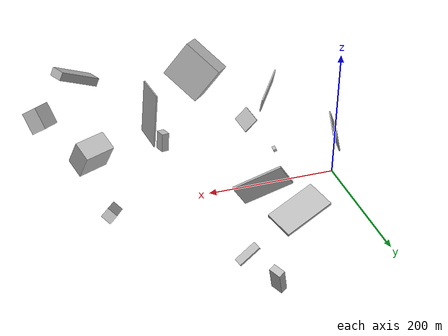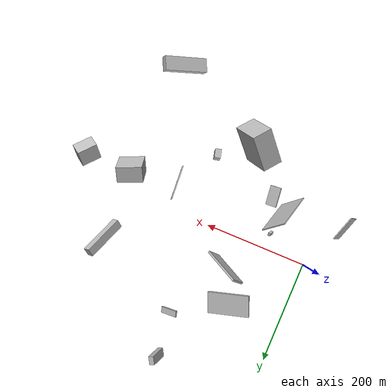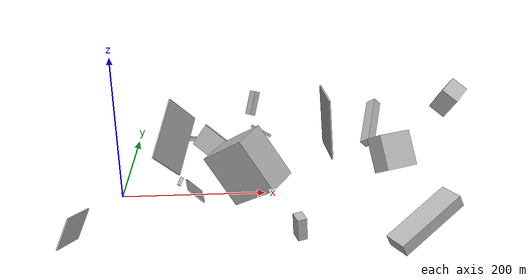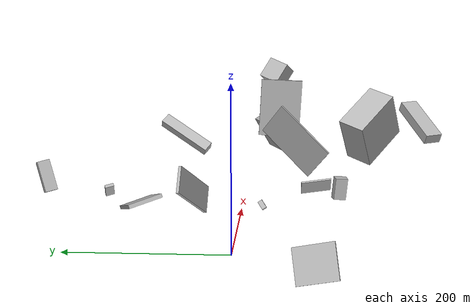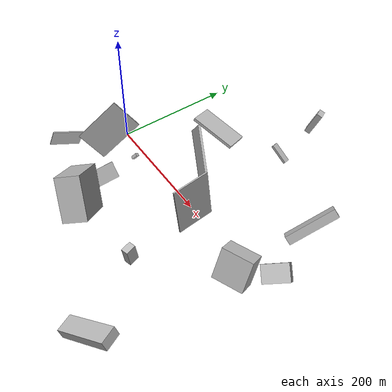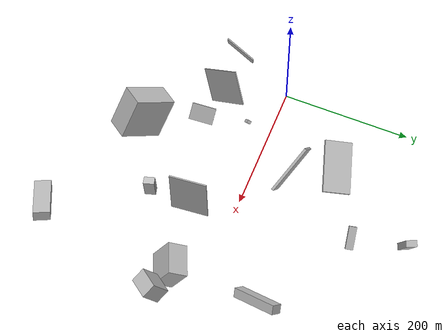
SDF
<sdf version="1.6">
 <world name="default">
  <scene>
   <sky><clouds><speed>12</speed></clouds></sky>
   <ambient>0.4 0.4 0.4 1</ambient>
   <background>0.7 0.7 0.7 1</background>
   <shadows>1</shadows>
  </scene>
  <gravity>0 0 -9.8066</gravity>
  <magnetic_field>6e-06 2.3e-05 -4.2e-05</magnetic_field>
  <physics default="0" name="default_physics" type="ode">
   <ode>
    <solver>
     <type>quick</type>
     <iters>10</iters>
     <sor>1.0</sor>
     <use_dynamic_moi_rescaling>0</use_dynamic_moi_rescaling>
    </solver>
    <constraints>
     <cfm>0</cfm>
     <erp>0.2</erp>
     <contact_max_correcting_vel>100</contact_max_correcting_vel>
     <contact_surface_layer>0.001</contact_surface_layer>
    </constraints>
   </ode>
   <max_step_size>0.004</max_step_size>
   <real_time_factor>1</real_time_factor>
   <real_time_update_rate>250</real_time_update_rate>
  </physics>
  <light name="sun" type="directional">
   <pose>0 0 10 0 0 0</pose>
   <diffuse>0.8 0.8 0.8 1</diffuse>
   <specular>0.2 0.2 0.2 1</specular>
   <attenuation>
    <range>1000</range>
    <constant>0.9</constant>
    <linear>0.01</linear>
    <quadratic>0.001</quadratic>
   </attenuation>
   <direction>-0.5 0.1 -0.9</direction>
  </light>
  <model name="building_1">
   <static>0</static>
   <pose>237.09139120835835 -140.63955069091418 21.005074894921602 1.4986564305867567 0.08540475938860313 -2.891743109601748</pose>
   <link name="link">
    <gravity>0</gravity>
    <pose>0 0 8.5 0 0 0</pose>
    <collision name="collision"><geometry><box><size>12 30 17</size></box></geometry></collision>
    <visual name="visual">
     <cast_shadows>0</cast_shadows>
     <geometry><box><size>12 30 17</size></box></geometry>
     <material>
      <script>
       <uri>model://HANNAS_wall/materials/scripts</uri>
       <uri>model://HANNAS_wall/materials/textures</uri>
       <name>vrc/HANNAS_wall</name>
      </script>
     </material>
    </visual>
   </link>
  </model>
  <model name="building_2">
   <static>0</static>
   <pose>370.9253308425261 -52.85737554683674 57.41523973023507 -0.5250861970477898 0.01692456908141021 0.40855266340665003</pose>
   <link name="link">
    <gravity>0</gravity>
    <pose>0 0 23.5 0 0 0</pose>
    <collision name="collision"><geometry><box><size>47 30 47</size></box></geometry></collision>
    <visual name="visual">
     <cast_shadows>0</cast_shadows>
     <geometry><box><size>47 30 47</size></box></geometry>
     <material>
      <script>
       <uri>model://HANNAS_wall/materials/scripts</uri>
       <uri>model://HANNAS_wall/materials/textures</uri>
       <name>vrc/HANNAS_wall</name>
      </script>
     </material>
    </visual>
   </link>
  </model>
  <model name="building_3">
   <static>0</static>
   <pose>187.61336015200007 -173.45852622995326 94.418587569597 -0.5924342215707814 -0.2098547658342679 0.9134746818143821</pose>
   <link name="link">
    <gravity>0</gravity>
    <pose>0 0 32.0 0 0 0</pose>
    <collision name="collision"><geometry><box><size>36 67 64</size></box></geometry></collision>
    <visual name="visual">
     <cast_shadows>0</cast_shadows>
     <geometry><box><size>36 67 64</size></box></geometry>
     <material>
      <script>
       <uri>model://HANNAS_wall/materials/scripts</uri>
       <uri>model://HANNAS_wall/materials/textures</uri>
       <name>vrc/HANNAS_wall</name>
      </script>
     </material>
    </visual>
   </link>
  </model>
  <model name="building_4">
   <static>0</static>
   <pose>142.84641019193114 133.96745765384043 22.873875887593787 0.7639867201224017 1.1916357270374252 -2.024906745861694</pose>
   <link name="link">
    <gravity>0</gravity>
    <pose>0 0 40.0 0 0 0</pose>
    <collision name="collision"><geometry><box><size>5 43 80</size></box></geometry></collision>
    <visual name="visual">
     <cast_shadows>0</cast_shadows>
     <geometry><box><size>5 43 80</size></box></geometry>
     <material>
      <script>
       <uri>model://HANNAS_wall/materials/scripts</uri>
       <uri>model://HANNAS_wall/materials/textures</uri>
       <name>vrc/HANNAS_wall</name>
      </script>
     </material>
    </visual>
   </link>
  </model>
  <model name="building_5">
   <static>0</static>
   <pose>83.06606007143247 -71.22894322562263 117.57631529027256 1.1831895293795411 -0.7320020399767794 1.2495408698552608</pose>
   <link name="link">
    <gravity>0</gravity>
    <pose>0 0 1.0 0 0 0</pose>
    <collision name="collision"><geometry><box><size>80 51 2</size></box></geometry></collision>
    <visual name="visual">
     <cast_shadows>0</cast_shadows>
     <geometry><box><size>80 51 2</size></box></geometry>
     <material>
      <script>
       <uri>model://HANNAS_wall/materials/scripts</uri>
       <uri>model://HANNAS_wall/materials/textures</uri>
       <name>vrc/HANNAS_wall</name>
      </script>
     </material>
    </visual>
   </link>
  </model>
  <model name="building_6">
   <static>0</static>
   <pose>86.90563510456491 -29.153031091519864 41.52268937834371 2.6478156214501323 -0.5663482610454247 -1.423096082175954</pose>
   <link name="link">
    <gravity>0</gravity>
    <pose>0 0 5.5 0 0 0</pose>
    <collision name="collision"><geometry><box><size>6 5 11</size></box></geometry></collision>
    <visual name="visual">
     <cast_shadows>0</cast_shadows>
     <geometry><box><size>6 5 11</size></box></geometry>
     <material>
      <script>
       <uri>model://HANNAS_wall/materials/scripts</uri>
       <uri>model://HANNAS_wall/materials/textures</uri>
       <name>vrc/HANNAS_wall</name>
      </script>
     </material>
    </visual>
   </link>
  </model>
  <model name="building_7">
   <static>0</static>
   <pose>279.44473669911133 -47.25100817783782 85.24607855786782 0.049678603363749296 -0.09616841117450223 0.06111066625230642</pose>
   <link name="link">
    <gravity>0</gravity>
    <pose>0 0 40.0 0 0 0</pose>
    <collision name="collision"><geometry><box><size>2 56 80</size></box></geometry></collision>
    <visual name="visual">
     <cast_shadows>0</cast_shadows>
     <geometry><box><size>2 56 80</size></box></geometry>
     <material>
      <script>
       <uri>model://HANNAS_wall/materials/scripts</uri>
       <uri>model://HANNAS_wall/materials/textures</uri>
       <name>vrc/HANNAS_wall</name>
      </script>
     </material>
    </visual>
   </link>
  </model>
  <model name="building_8">
   <static>0</static>
   <pose>424.1422313987225 -53.27122503132517 147.33292346700654 1.1450342903451765 0.942726640478741 2.1089143530925165</pose>
   <link name="link">
    <gravity>0</gravity>
    <pose>0 0 17.0 0 0 0</pose>
    <collision name="collision"><geometry><box><size>32 23 34</size></box></geometry></collision>
    <visual name="visual">
     <cast_shadows>0</cast_shadows>
     <geometry><box><size>32 23 34</size></box></geometry>
     <material>
      <script>
       <uri>model://HANNAS_wall/materials/scripts</uri>
       <uri>model://HANNAS_wall/materials/textures</uri>
       <name>vrc/HANNAS_wall</name>
      </script>
     </material>
    </visual>
   </link>
  </model>
  <model name="building_9">
   <static>0</static>
   <pose>362.539563850532 91.68240366235887 72.15509650292 -2.502230462453633 -0.5988260105328831 -0.7065515620228031</pose>
   <link name="link">
    <gravity>0</gravity>
    <pose>0 0 7.0 0 0 0</pose>
    <collision name="collision"><geometry><box><size>16 80 14</size></box></geometry></collision>
    <visual name="visual">
     <cast_shadows>0</cast_shadows>
     <geometry><box><size>16 80 14</size></box></geometry>
     <material>
      <script>
       <uri>model://HANNAS_wall/materials/scripts</uri>
       <uri>model://HANNAS_wall/materials/textures</uri>
       <name>vrc/HANNAS_wall</name>
      </script>
     </material>
    </visual>
   </link>
  </model>
  <model name="building_10">
   <static>0</static>
   <pose>315.07453466669415 -267.0043381366172 75.20321601003593 0.051141540331595306 -1.0830781356237658 -2.7437784198618993</pose>
   <link name="link">
    <gravity>0</gravity>
    <pose>0 0 40.0 0 0 0</pose>
    <collision name="collision"><geometry><box><size>14 25 80</size></box></geometry></collision>
    <visual name="visual">
     <cast_shadows>0</cast_shadows>
     <geometry><box><size>14 25 80</size></box></geometry>
     <material>
      <script>
       <uri>model://HANNAS_wall/materials/scripts</uri>
       <uri>model://HANNAS_wall/materials/textures</uri>
       <name>vrc/HANNAS_wall</name>
      </script>
     </material>
    </visual>
   </link>
  </model>
  <model name="building_11">
   <static>0</static>
   <pose>-38.67044751059631 -93.40599259336199 27.046880642256884 2.876325485329991 0.33195807417036005 -0.3704905988336788</pose>
   <link name="link">
    <gravity>0</gravity>
    <pose>0 0 22.0 0 0 0</pose>
    <collision name="collision"><geometry><box><size>2 52 44</size></box></geometry></collision>
    <visual name="visual">
     <cast_shadows>0</cast_shadows>
     <geometry><box><size>2 52 44</size></box></geometry>
     <material>
      <script>
       <uri>model://HANNAS_wall/materials/scripts</uri>
       <uri>model://HANNAS_wall/materials/textures</uri>
       <name>vrc/HANNAS_wall</name>
      </script>
     </material>
    </visual>
   </link>
  </model>
  <model name="building_12">
   <static>0</static>
   <pose>137.77883782172074 57.45492320653878 41.78058061071281 1.7683359281018565 -0.5564371844001066 2.706574096246308</pose>
   <link name="link">
    <gravity>0</gravity>
    <pose>0 0 2.0 0 0 0</pose>
    <collision name="collision"><geometry><box><size>80 36 4</size></box></geometry></collision>
    <visual name="visual">
     <cast_shadows>0</cast_shadows>
     <geometry><box><size>80 36 4</size></box></geometry>
     <material>
      <script>
       <uri>model://HANNAS_wall/materials/scripts</uri>
       <uri>model://HANNAS_wall/materials/textures</uri>
       <name>vrc/HANNAS_wall</name>
      </script>
     </material>
    </visual>
   </link>
  </model>
  <model name="building_13">
   <static>0</static>
   <pose>117.03975402106808 -97.73061899888395 47.638895595396484 -0.16010943780658685 -0.794499898468642 0.23761374100399302</pose>
   <link name="link">
    <gravity>0</gravity>
    <pose>0 0 13.0 0 0 0</pose>
    <collision name="collision"><geometry><box><size>2 37 26</size></box></geometry></collision>
    <visual name="visual">
     <cast_shadows>0</cast_shadows>
     <geometry><box><size>2 37 26</size></box></geometry>
     <material>
      <script>
       <uri>model://HANNAS_wall/materials/scripts</uri>
       <uri>model://HANNAS_wall/materials/textures</uri>
       <name>vrc/HANNAS_wall</name>
      </script>
     </material>
    </visual>
   </link>
  </model>
  <model name="building_14">
   <static>0</static>
   <pose>190.17445105431852 177.5052493917988 32.28699393820497 2.7798210812476905 -0.9457171415438284 0.6038452155143575</pose>
   <link name="link">
    <gravity>0</gravity>
    <pose>0 0 17.5 0 0 0</pose>
    <collision name="collision"><geometry><box><size>4 12 35</size></box></geometry></collision>
    <visual name="visual">
     <cast_shadows>0</cast_shadows>
     <geometry><box><size>4 12 35</size></box></geometry>
     <material>
      <script>
       <uri>model://HANNAS_wall/materials/scripts</uri>
       <uri>model://HANNAS_wall/materials/textures</uri>
       <name>vrc/HANNAS_wall</name>
      </script>
     </material>
    </visual>
   </link>
  </model>
  <model name="building_15">
   <static>0</static>
   <pose>198.92427150033993 269.03740048694044 62.85976159028748 -2.9731012415575186 -0.34441894498746184 -2.6885309737192187</pose>
   <link name="link">
    <gravity>0</gravity>
    <pose>0 0 21.0 0 0 0</pose>
    <collision name="collision"><geometry><box><size>10 17 42</size></box></geometry></collision>
    <visual name="visual">
     <cast_shadows>0</cast_shadows>
     <geometry><box><size>10 17 42</size></box></geometry>
     <material>
      <script>
       <uri>model://HANNAS_wall/materials/scripts</uri>
       <uri>model://HANNAS_wall/materials/textures</uri>
       <name>vrc/HANNAS_wall</name>
      </script>
     </material>
    </visual>
   </link>
  </model>
 </world>
</sdf>
